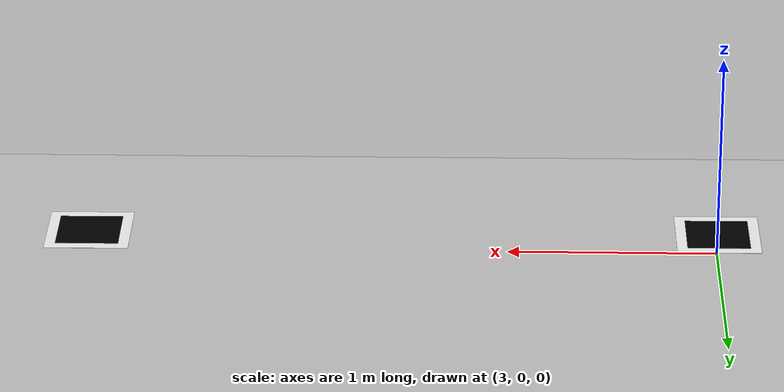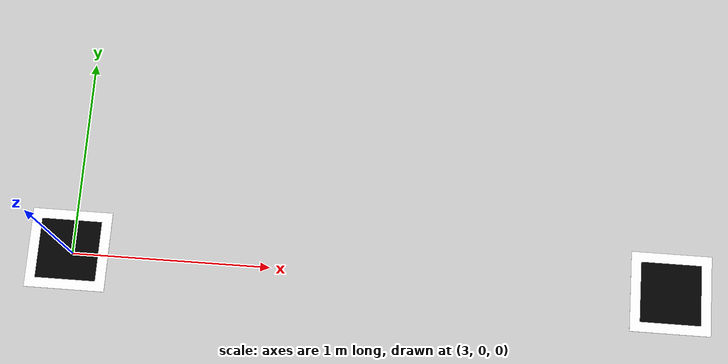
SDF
<?xml version="1.0"?>
<sdf version="1.6">
  <world name="simple_docking_world">

    <!-- Physics -->
    <physics type="ode">
      <real_time_update_rate>1000.0</real_time_update_rate>
      <max_step_size>0.001</max_step_size>
    </physics>

    <!-- Lighting -->
    <include>
      <uri>model://sun</uri>
    </include>

    <!-- Ground -->
    <include>
      <uri>model://ground_plane</uri>
    </include>

    <!-- Simple AprilTag 1 - Black square on white background -->
    <model name="tag_1">
      <static>true</static>
      <pose>3 0 0.1 0 0 0</pose>
      <link name="link">
        <!-- White background -->
        <visual name="white_bg">
          <geometry>
            <box><size>0.4 0.4 0.001</size></box>
          </geometry>
          <material>
            <ambient>1 1 1 1</ambient>
            <diffuse>1 1 1 1</diffuse>
          </material>
        </visual>
        <!-- Black center -->
        <visual name="black_center">
          <pose>0 0 0.001 0 0 0</pose>
          <geometry>
            <box><size>0.3 0.3 0.001</size></box>
          </geometry>
          <material>
            <ambient>0 0 0 1</ambient>
            <diffuse>0 0 0 1</diffuse>
          </material>
        </visual>
      </link>
    </model>

    <!-- Simple AprilTag 2 - Further away -->
    <model name="tag_2">
      <static>true</static>
      <pose>6 0 0.1 0 0 0</pose>
      <link name="link">
        <visual name="white_bg">
          <geometry>
            <box><size>0.4 0.4 0.001</size></box>
          </geometry>
          <material>
            <ambient>1 1 1 1</ambient>
            <diffuse>1 1 1 1</diffuse>
          </material>
        </visual>
        <visual name="black_center">
          <pose>0 0 0.001 0 0 0</pose>
          <geometry>
            <box><size>0.3 0.3 0.001</size></box>
          </geometry>
          <material>
            <ambient>0 0 0 1</ambient>
            <diffuse>0 0 0 1</diffuse>
          </material>
        </visual>
      </link>
    </model>

  </world>
</sdf>
